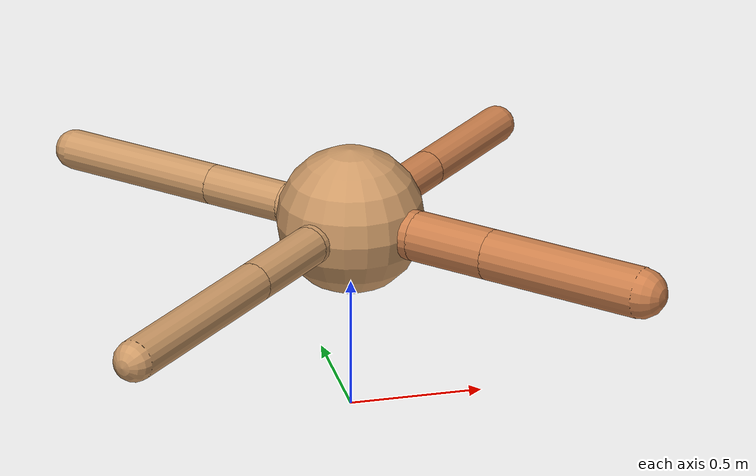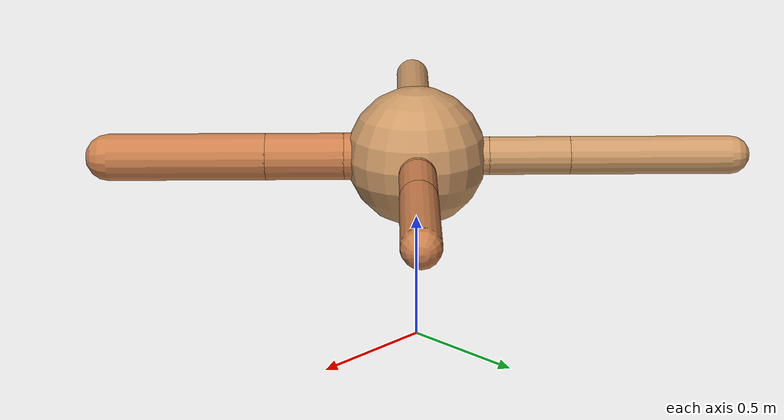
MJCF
<?xml version="1.0" ?>
<mujoco model="ant">

	<compiler angle="degree" coordinate="local" inertiafromgeom="true"/>

	<option integrator="RK4" timestep="0.01"/>

	<custom>

		<numeric data="0.0 0.0 0.55 1.0 0.0 0.0 0.0 0.0 1.0 0.0 -1.0 0.0 -1.0 0.0 1.0" name="init_qpos"/>

	</custom>

	<default>

		<joint armature="1" damping="1" limited="true"/>

		<geom conaffinity="0" condim="3" density="5.0" friction="1.5 0.1 0.1" margin="0.01" rgba="0.8 0.6 0.4 1"/>

	</default>

	<worldbody>

		<body name="torso" pos="0 0 0.75">

			<geom name="torso_geom" pos="0 0 0" size="0.27376394507434726" type="sphere"/>

			<!--joint armature="0" damping="0" limited="false" margin="0.01" name="root" pos="0 0 0" type="free"/-->

			<body name="front_left_leg" pos="0 0 0">

				<geom fromto="0 0 0 0.2 0.2 0" name="aux_1_geom" size="0.07119965711350856" type="capsule" rgba=".8 .5 .3 1"/>

				<body name="aux_1" pos="0.2 0.2 0">

					<joint axis="0 0 1" name="hip_1" pos="0.0 0.0 0.0" range="-40 40" type="hinge"/>

					<geom fromto="0 0 0 0.18265673434412494 0.18265673434412494 0" name="left_leg_geom" size="0.07119965711350856" type="capsule" rgba=".8 .5 .3 1"/>

					<body pos="0.18265673434412494 0.18265673434412494 0" name="front_left_foot">

						<joint axis="-1 1 0" name="ankle_1" pos="0.0 0.0 0.0" range="30 100" type="hinge"/>

						<geom fromto="0 0 0 0.3653134686882499 0.3653134686882499 0" name="left_ankle_geom" size="0.07119965711350856" type="capsule" rgba=".8 .5 .3 1"/>

					</body>

				</body>

			</body>

			<body name="front_right_leg" pos="0 0 0">

				<geom fromto="0 0 0 -0.2 0.2 0" name="aux_2_geom" size="0.07498962891395398" type="capsule"/>

				<body name="aux_2" pos="-0.2 0.2 0">

					<joint axis="0 0 1" name="hip_2" pos="0.0 0.0 0.0" range="-40 40" type="hinge"/>

					<geom fromto="0 0 0 -0.22334060379080004 0.22334060379080004 0" name="right_leg_geom" size="0.07498962891395398" type="capsule"/>

					<body pos="-0.22334060379080004 0.22334060379080004 0" name="front_right_foot">

						<joint axis="1 1 0" name="ankle_2" pos="0.0 0.0 0.0" range="-100 -30" type="hinge"/>

						<geom fromto="0 0 0 -0.44668120758160007 0.44668120758160007 0" name="right_ankle_geom" size="0.07498962891395398" type="capsule"/>

					</body>

				</body>

			</body>

			<body name="left_back_leg" pos="0 0 0">

				<geom fromto="0 0 0 -0.2 -0.2 0" name="aux_3_geom" size="0.07402037819900464" type="capsule"/>

				<body name="aux_3" pos="-0.2 -0.2 0">

					<joint axis="0 0 1" name="hip_3" pos="0.0 0.0 0.0" range="-40 40" type="hinge"/>

					<geom fromto="0 0 0 -0.2584522995115626 -0.2584522995115626 0" name="back_leg_geom" size="0.07402037819900464" type="capsule"/>

					<body pos="-0.2584522995115626 -0.2584522995115626 0" name="left_back_foot">

						<joint axis="-1 1 0" name="ankle_3" pos="0.0 0.0 0.0" range="-100 -30" type="hinge"/>

						<geom fromto="0 0 0 -0.5169045990231252 -0.5169045990231252 0" name="third_ankle_geom" size="0.07402037819900464" type="capsule"/>

					</body>

				</body>

			</body>

			<body name="right_back_leg" pos="0 0 0">

				<geom fromto="0 0 0 0.2 -0.2 0" name="aux_4_geom" size="0.09227670512244489" type="capsule" rgba=".8 .5 .3 1"/>

				<body name="aux_4" pos="0.2 -0.2 0">

					<joint axis="0 0 1" name="hip_4" pos="0.0 0.0 0.0" range="-40 40" type="hinge"/>

					<geom fromto="0 0 0 0.21592928962957914 -0.21592928962957914 0" name="rightback_leg_geom" size="0.09227670512244489" type="capsule" rgba=".8 .5 .3 1"/>

					<body pos="0.21592928962957914 -0.21592928962957914 0" name="right_back_foot">

						<joint axis="1 1 0" name="ankle_4" pos="0.0 0.0 0.0" range="30 100" type="hinge"/>

						<geom fromto="0 0 0 0.43185857925915827 -0.43185857925915827 0" name="fourth_ankle_geom" size="0.09227670512244489" type="capsule" rgba=".8 .5 .3 1"/>

					</body>

				</body>

			</body>

		</body>

	</worldbody>

	<actuator>

		<motor ctrllimited="true" ctrlrange="-1.0 1.0" joint="hip_4" gear="150"/>

		<motor ctrllimited="true" ctrlrange="-1.0 1.0" joint="ankle_4" gear="150"/>

		<motor ctrllimited="true" ctrlrange="-1.0 1.0" joint="hip_1" gear="150"/>

		<motor ctrllimited="true" ctrlrange="-1.0 1.0" joint="ankle_1" gear="150"/>

		<motor ctrllimited="true" ctrlrange="-1.0 1.0" joint="hip_2" gear="150"/>

		<motor ctrllimited="true" ctrlrange="-1.0 1.0" joint="ankle_2" gear="150"/>

		<motor ctrllimited="true" ctrlrange="-1.0 1.0" joint="hip_3" gear="150"/>

		<motor ctrllimited="true" ctrlrange="-1.0 1.0" joint="ankle_3" gear="150"/>

	</actuator>

</mujoco>
